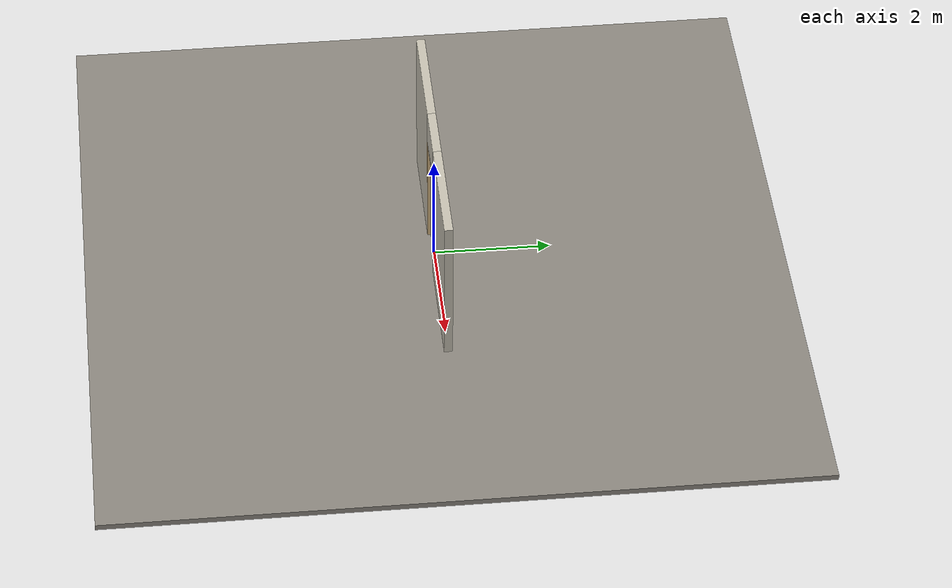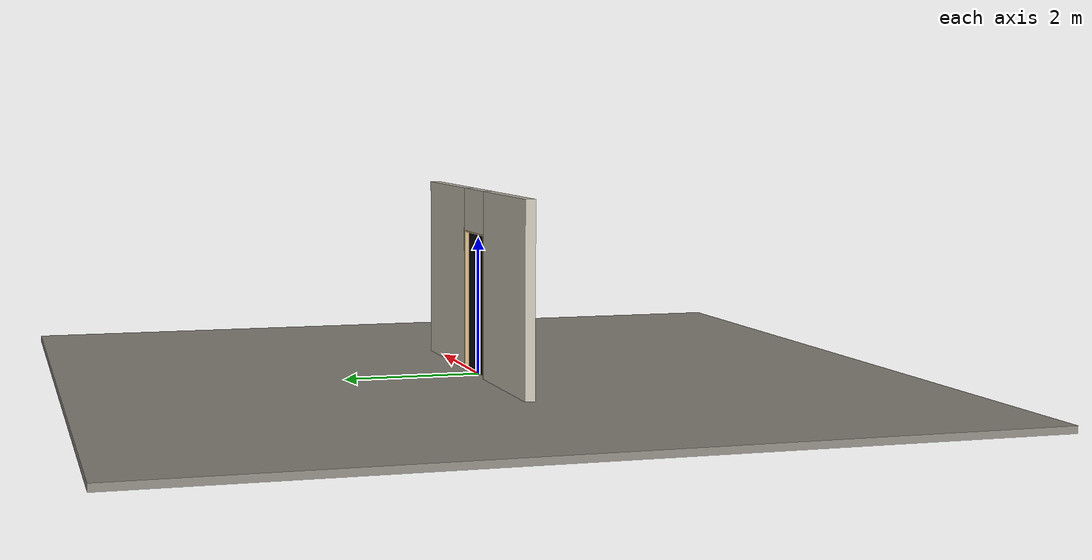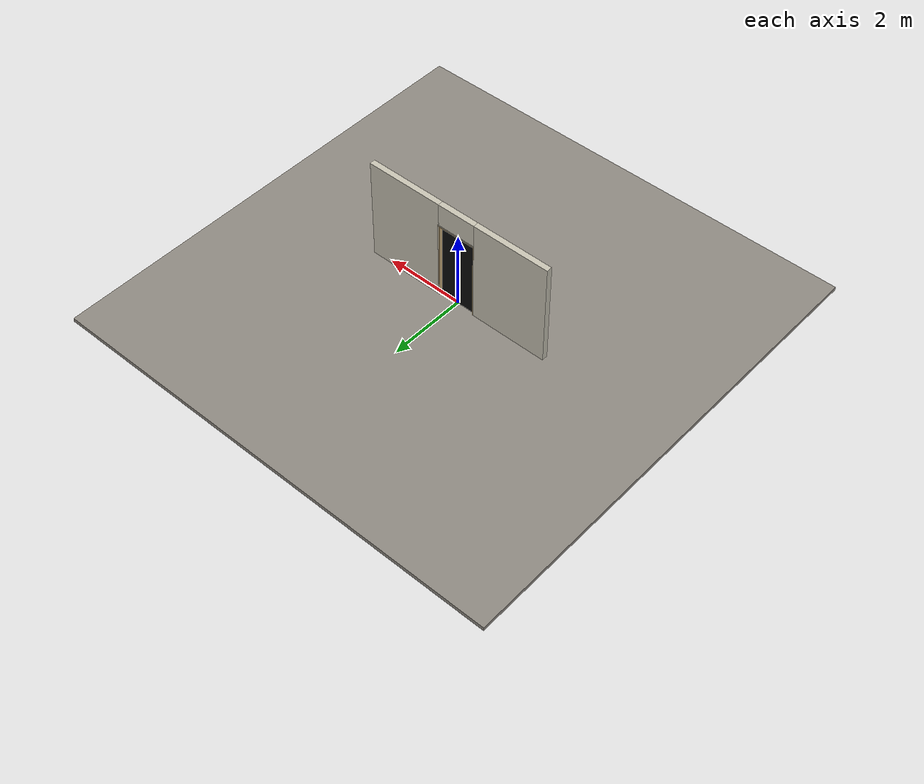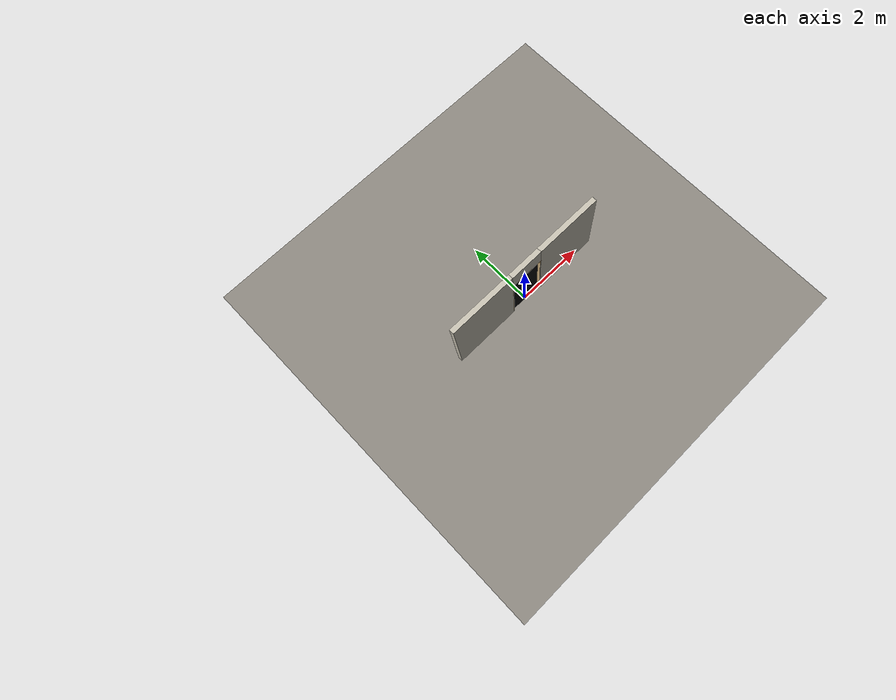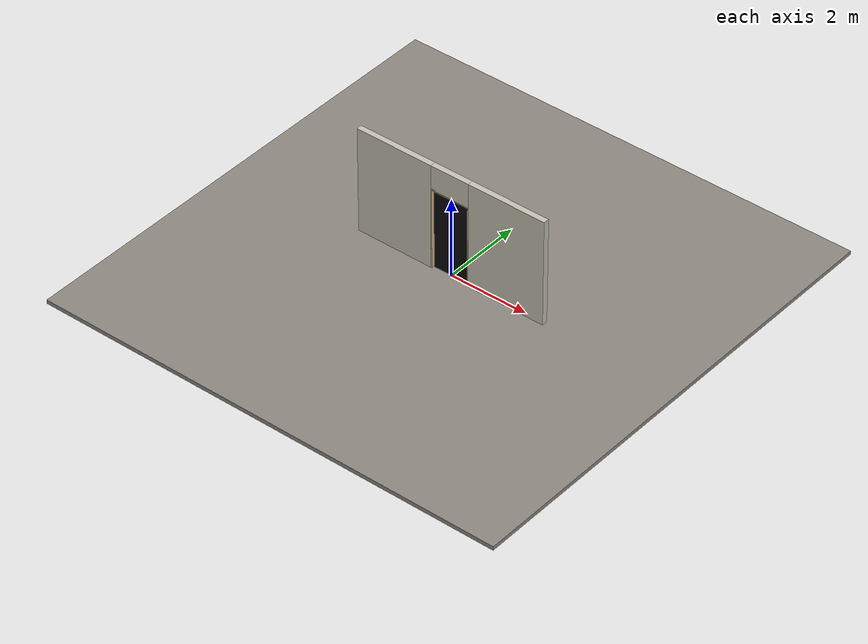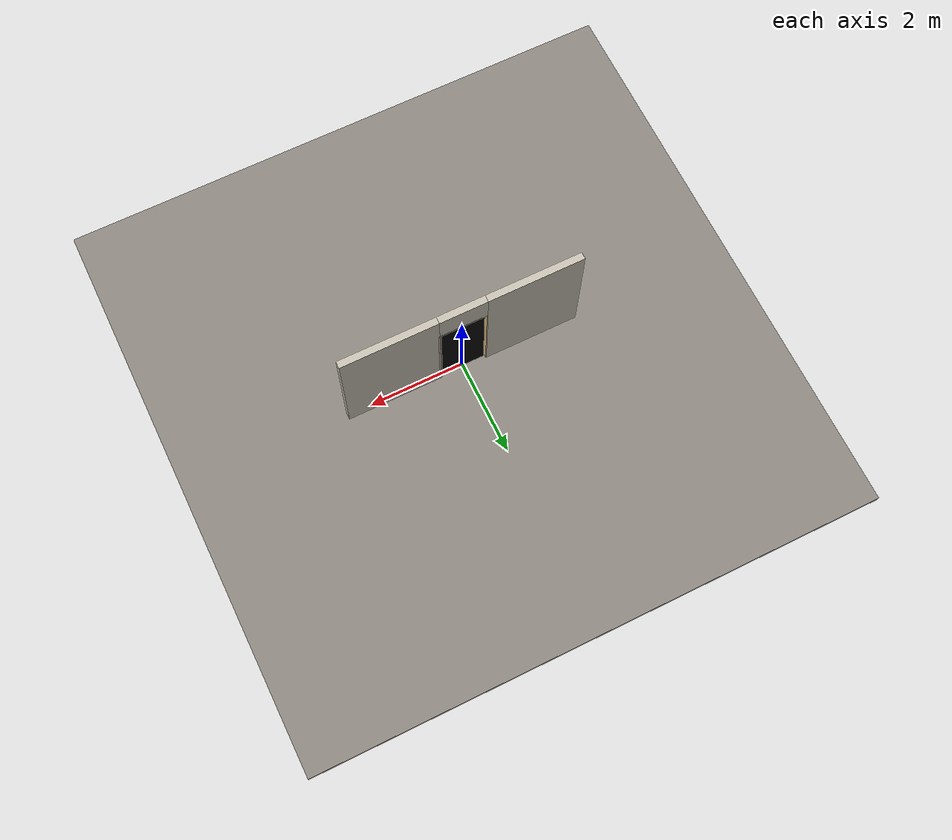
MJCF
<?xml version="1.0" ?>
<mujoco model="db0924_saloon_minimal">
  <compiler angle="radian" meshdir="../../hardware" texturedir="../../textures" autolimits="true" inertiafromgeom="false"/>
  <option timestep="0.002" integrator="implicitfast" cone="elliptic" impratio="10" noslip_iterations="3">
    <flag multiccd="enable"/>
  </option>
  <size memory="16M"/>
  <default>
    <geom condim="4" solref="0.005 1" solimp="0.95 0.99 0.001"/>
    <joint solreflimit="0.005 1" solimplimit="0.95 0.99 0.001"/>
    <tendon solreflimit="0.005 1"/>
    <equality solref="0.002 1"/>
  </default>
  <visual>
    <headlight ambient="0.4 0.4 0.4" diffuse="0.7 0.7 0.7" specular="0.2 0.2 0.2"/>
    <quality shadowsize="4096"/>
    <map znear="0.01" zfar="60"/>
  </visual>
  <asset>
    <material name="mat_floor" rgba="0.55 0.53 0.5 1" specular="0.2" shininess="0.15" reflectance="0"/>
    <material name="mat_wall" rgba="0.78 0.76 0.7 1" specular="0.2" shininess="0.1" reflectance="0"/>
    <material name="mat_frame" rgba="0.82 0.7 0.5 1" specular="0.2" shininess="0.45" reflectance="0"/>
    <material name="mat_leaf" rgba="0.04 0.04 0.04 1" specular="0.2" shininess="0.56" reflectance="0"/>
    <material name="mat_hinge" rgba="0.65 0.66 0.68 1" specular="0.74" shininess="0.5" reflectance="0.36"/>
    <texture name="skybox" type="skybox" builtin="gradient" rgb1="0.6 0.7 0.85" rgb2="0.9 0.92 0.95" width="256" height="256"/>
  </asset>
  <worldbody>
    <light name="sun" pos="1.5 -2.5 4" dir="-0.3 0.5 -0.8" directional="true" diffuse="0.8 0.8 0.8" specular="0.3 0.3 0.3" castshadow="true"/>
    <light name="fill" pos="-1.5 2.5 3" dir="0.3 -0.5 -0.7" directional="true" diffuse="0.35 0.35 0.4" castshadow="false"/>
    <camera name="robot_view" pos="0 -2.554375 1.744225" xyaxes="1 0 0 0 0.26963 0.962964" fovy="52"/>
    <camera name="far_view" pos="0 2.554375 1.744225" xyaxes="-1 0 0 0 -0.26963 0.962964" fovy="52"/>
    <camera name="iso" pos="1.941325 -2.145675 2.152925" xyaxes="0.741536 0.670913 0 -0.242917 0.268487 0.932151" fovy="46"/>
    <camera name="detail_handle" pos="0.48 -0.8 1.28" xyaxes="0.97561 0.219512 0 -0.070934 0.315262 0.94635" fovy="38"/>
    <geom name="floor" type="box" size="6 6 0.05" pos="0 0 -0.05" material="mat_floor" group="0" contype="1" conaffinity="1" friction="0.8 0.005 0.0001" density="2400"/>
    <geom name="wall_left" type="box" size="1.00075 0.0725 1.35" pos="-1.49925 0 1.35" material="mat_wall" group="0" contype="1" conaffinity="1" friction="0.6 0.005 0.0001" density="800"/>
    <geom name="wall_right" type="box" size="1.00075 0.0725 1.35" pos="1.49925 0 1.35" material="mat_wall" group="0" contype="1" conaffinity="1" friction="0.6 0.005 0.0001" density="800"/>
    <geom name="wall_header" type="box" size="0.4985 0.0725 0.3115" pos="0 0 2.3885" material="mat_wall" group="0" contype="1" conaffinity="1" friction="0.6 0.005 0.0001" density="800"/>
    <geom name="jamb_hinge" type="box" size="0.0095 0.0725 1.029" pos="-0.489 0 1.029" material="mat_frame" group="0" contype="1" conaffinity="1" friction="0.6 0.005 0.0001" density="400"/>
    <geom name="jamb_strike" type="box" size="0.0095 0.0725 1.029" pos="0.489 0 1.029" material="mat_frame" group="0" contype="1" conaffinity="1" friction="0.6 0.005 0.0001" density="400"/>
    <geom name="stud_strike" type="box" size="0.015 0.0725 1.029" pos="0.5135 0 1.029" material="mat_wall" group="0" contype="1" conaffinity="1" friction="0.6 0.005 0.0001" density="500"/>
    <geom name="jamb_head" type="box" size="0.5135 0.0725 0.0095" pos="0.015 0 2.0675" material="mat_frame" group="0" contype="1" conaffinity="1" friction="0.6 0.005 0.0001" density="400"/>
    <geom name="head_stud" type="box" size="0.5135 0.0725 0.015" pos="0.015 0 2.092" material="mat_wall" group="0" contype="1" conaffinity="1" friction="0.6 0.005 0.0001" density="500"/>
    <site name="approach_point" pos="0 -1.5 0" quat="1 0 0 0" size="0.05" rgba="0.2 0.9 0.2 0.5" group="4"/>
    <site name="goal_point" pos="0 1.5 0" quat="1 0 0 0" size="0.05" rgba="0.2 0.9 0.2 0.5" group="4"/>
    <site name="door_plane_center" pos="0 0 1.029" quat="1 0 0 0" size="0.02" rgba="0.2 0.9 0.2 0.5" group="4"/>
    <body name="leaf" pos="-0.4795 0 0">
      <inertial pos="0.4735 0 1.03" mass="50.33575" quat="-0.5 0.5 0.5 0.5" diaginertia="3.402801566 17.290854456 20.68337914"/>
      <joint name="leaf_hinge" type="hinge" axis="0 0 1" pos="0.0235 0 0" limited="true" range="-1.570796 1.570796" damping="0.990538" frictionloss="4.300726" stiffness="4.4" springref="0" armature="0.02"/>
      <geom name="leaf_slab" type="box" size="0.45 0.0175 1.015" pos="0.4735 0 1.03" material="mat_leaf" group="0" contype="1" conaffinity="1" friction="0.35 0.005 0.0001" density="1"/>
      <site name="leaf_push_site" pos="0.6985 -0.0175 1.233" quat="1 0 0 0" size="0.015" rgba="0.2 0.9 0.2 0.5" group="4"/>
    </body>
  </worldbody>
  <sensor>
    <jointpos name="leaf_hinge_pos" joint="leaf_hinge"/>
    <jointvel name="leaf_hinge_vel" joint="leaf_hinge"/>
  </sensor>
</mujoco>
